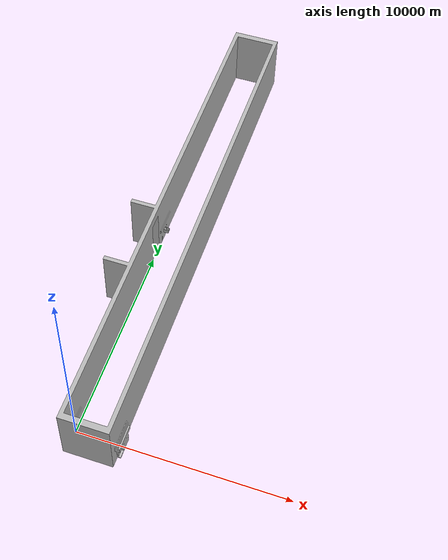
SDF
<?xml version="1.0"?>
<sdf version="1.5">
    <model name="trico">
      <pose>14.75 -0.25 0  0 0 0</pose>
      <static>true</static>
      <link name="link">
       <light type="directional" name="light_livingroom">
                                <pose>14 0 10 0 0 0</pose>
                                <diffuse>1 1 1 1</diffuse>
          			 <specular>1 1 1 1</specular>
          			 <castshadows>false></castshadows>
                                <direction>0 0 -1</direction>
      </light>
      <visual name="visual">
        <geometry>
          <mesh>
            <uri>model://corredor/meshes/corredor.stl</uri>
          </mesh>
        </geometry>
      </visual>
      <collision name="collision">
        <geometry>
          <mesh>
            <uri>model://corredor/meshes/corredor.stl</uri>
          </mesh>
        </geometry>
      </collision>
    </link>
  </model>
</sdf>
